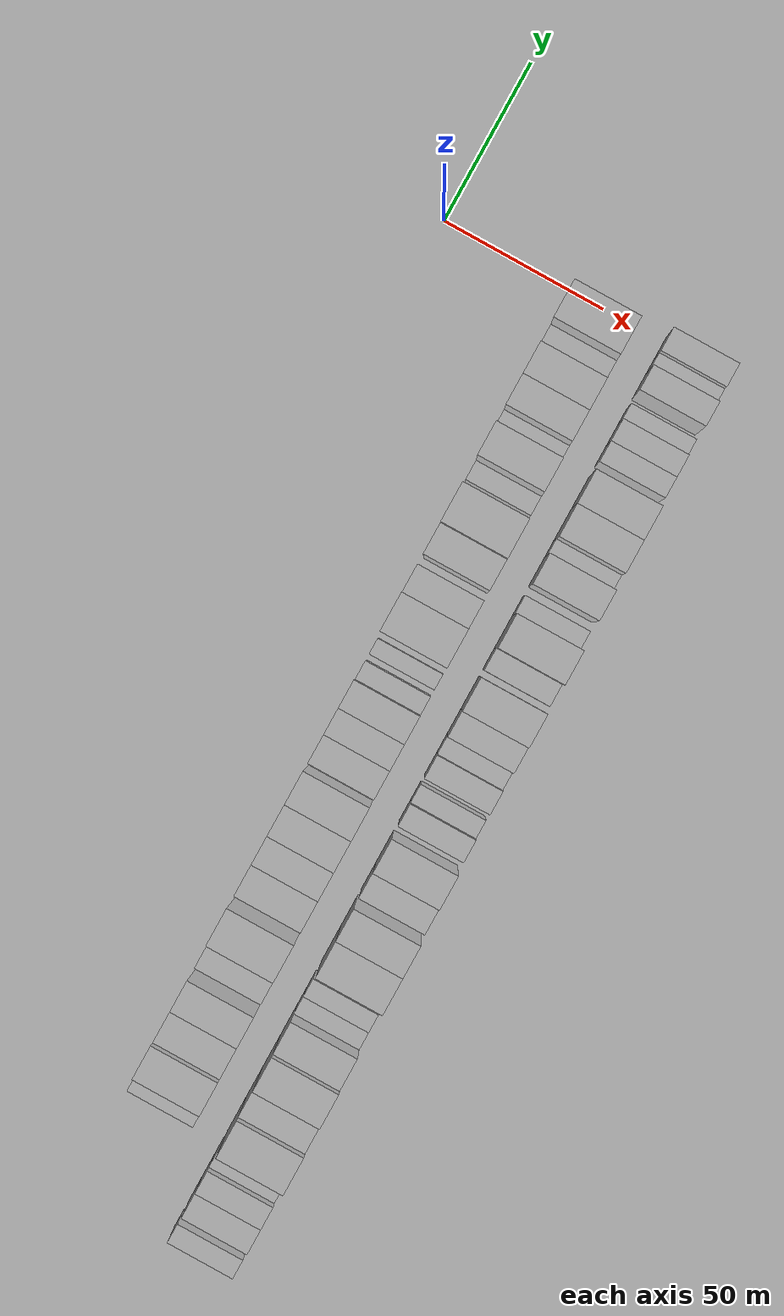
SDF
<sdf version="1.6">
 <world name="default">
  <include><name>ground_plane_1</name><uri>model://HANNAS_ground_plane</uri></include>
  <include>
   <name>ground_plane_2</name>
   <uri>model://HANNAS_ground_plane</uri>
   <pose>100 0 0  0 0 0</pose>
  </include>
  <model name="building_1">
   <static>1</static>
   <pose>50.0000 -243.4653 0 0.000000 0.000000 0.000000</pose>
   <link name="link">
    <pose>0 0 7.50 0 0 0</pose>
    <collision name="collision"><geometry><box><size>20.0000 6.3565 15.0000</size></box></geometry></collision>
    <visual name="visual">
     <cast_shadows>0</cast_shadows>
     <geometry><box><size>20.0000 6.3565 15.0000</size></box></geometry>
     <material>
      <script>
       <uri>model://HANNAS_wall/materials/scripts</uri>
       <uri>model://HANNAS_wall/materials/textures</uri>
       <name>vrc/HANNAS_wall</name>
      </script>
     </material>
    </visual>
   </link>
  </model>
  <model name="building_2">
   <static>1</static>
   <pose>50.0000 -235.2615 0 0.000000 0.000000 0.000000</pose>
   <link name="link">
    <pose>0 0 12.00 0 0 0</pose>
    <collision name="collision"><geometry><box><size>20.0000 10.0511 24.0000</size></box></geometry></collision>
    <visual name="visual">
     <cast_shadows>0</cast_shadows>
     <geometry><box><size>20.0000 10.0511 24.0000</size></box></geometry>
     <material>
      <script>
       <uri>model://HANNAS_wall/materials/scripts</uri>
       <uri>model://HANNAS_wall/materials/textures</uri>
       <name>vrc/HANNAS_wall</name>
      </script>
     </material>
    </visual>
   </link>
  </model>
  <model name="building_3">
   <static>1</static>
   <pose>50.0000 -225.6346 0 0.000000 0.000000 0.000000</pose>
   <link name="link">
    <pose>0 0 10.50 0 0 0</pose>
    <collision name="collision"><geometry><box><size>20.0000 9.2027 21.0000</size></box></geometry></collision>
    <visual name="visual">
     <cast_shadows>0</cast_shadows>
     <geometry><box><size>20.0000 9.2027 21.0000</size></box></geometry>
     <material>
      <script>
       <uri>model://HANNAS_wall/materials/scripts</uri>
       <uri>model://HANNAS_wall/materials/textures</uri>
       <name>vrc/HANNAS_wall</name>
      </script>
     </material>
    </visual>
   </link>
  </model>
  <model name="building_4">
   <static>1</static>
   <pose>50.0000 -216.3543 0 0.000000 0.000000 0.000000</pose>
   <link name="link">
    <pose>0 0 10.50 0 0 0</pose>
    <collision name="collision"><geometry><box><size>20.0000 9.3578 21.0000</size></box></geometry></collision>
    <visual name="visual">
     <cast_shadows>0</cast_shadows>
     <geometry><box><size>20.0000 9.3578 21.0000</size></box></geometry>
     <material>
      <script>
       <uri>model://HANNAS_wall/materials/scripts</uri>
       <uri>model://HANNAS_wall/materials/textures</uri>
       <name>vrc/HANNAS_wall</name>
      </script>
     </material>
    </visual>
   </link>
  </model>
  <model name="building_5">
   <static>1</static>
   <pose>50.0000 -204.6761 0 0.000000 0.000000 0.000000</pose>
   <link name="link">
    <pose>0 0 9.00 0 0 0</pose>
    <collision name="collision"><geometry><box><size>20.0000 7.9984 18.0000</size></box></geometry></collision>
    <visual name="visual">
     <cast_shadows>0</cast_shadows>
     <geometry><box><size>20.0000 7.9984 18.0000</size></box></geometry>
     <material>
      <script>
       <uri>model://HANNAS_wall/materials/scripts</uri>
       <uri>model://HANNAS_wall/materials/textures</uri>
       <name>vrc/HANNAS_wall</name>
      </script>
     </material>
    </visual>
   </link>
  </model>
  <model name="building_6">
   <static>1</static>
   <pose>50.0000 -195.0604 0 0.000000 0.000000 0.000000</pose>
   <link name="link">
    <pose>0 0 12.00 0 0 0</pose>
    <collision name="collision"><geometry><box><size>20.0000 11.2330 24.0000</size></box></geometry></collision>
    <visual name="visual">
     <cast_shadows>0</cast_shadows>
     <geometry><box><size>20.0000 11.2330 24.0000</size></box></geometry>
     <material>
      <script>
       <uri>model://HANNAS_wall/materials/scripts</uri>
       <uri>model://HANNAS_wall/materials/textures</uri>
       <name>vrc/HANNAS_wall</name>
      </script>
     </material>
    </visual>
   </link>
  </model>
  <model name="building_7">
   <static>1</static>
   <pose>50.0000 -181.7462 0 0.000000 0.000000 0.000000</pose>
   <link name="link">
    <pose>0 0 10.50 0 0 0</pose>
    <collision name="collision"><geometry><box><size>20.0000 9.3955 21.0000</size></box></geometry></collision>
    <visual name="visual">
     <cast_shadows>0</cast_shadows>
     <geometry><box><size>20.0000 9.3955 21.0000</size></box></geometry>
     <material>
      <script>
       <uri>model://HANNAS_wall/materials/scripts</uri>
       <uri>model://HANNAS_wall/materials/textures</uri>
       <name>vrc/HANNAS_wall</name>
      </script>
     </material>
    </visual>
   </link>
  </model>
  <model name="building_8">
   <static>1</static>
   <pose>50.0000 -172.7809 0 0.000000 0.000000 0.000000</pose>
   <link name="link">
    <pose>0 0 10.50 0 0 0</pose>
    <collision name="collision"><geometry><box><size>20.0000 8.5352 21.0000</size></box></geometry></collision>
    <visual name="visual">
     <cast_shadows>0</cast_shadows>
     <geometry><box><size>20.0000 8.5352 21.0000</size></box></geometry>
     <material>
      <script>
       <uri>model://HANNAS_wall/materials/scripts</uri>
       <uri>model://HANNAS_wall/materials/textures</uri>
       <name>vrc/HANNAS_wall</name>
      </script>
     </material>
    </visual>
   </link>
  </model>
  <model name="building_9">
   <static>1</static>
   <pose>50.0000 -163.7845 0 0.000000 0.000000 0.000000</pose>
   <link name="link">
    <pose>0 0 10.50 0 0 0</pose>
    <collision name="collision"><geometry><box><size>20.0000 9.4576 21.0000</size></box></geometry></collision>
    <visual name="visual">
     <cast_shadows>0</cast_shadows>
     <geometry><box><size>20.0000 9.4576 21.0000</size></box></geometry>
     <material>
      <script>
       <uri>model://HANNAS_wall/materials/scripts</uri>
       <uri>model://HANNAS_wall/materials/textures</uri>
       <name>vrc/HANNAS_wall</name>
      </script>
     </material>
    </visual>
   </link>
  </model>
  <model name="building_10">
   <static>1</static>
   <pose>50.0000 -154.0091 0 0.000000 0.000000 0.000000</pose>
   <link name="link">
    <pose>0 0 10.50 0 0 0</pose>
    <collision name="collision"><geometry><box><size>20.0000 10.0933 21.0000</size></box></geometry></collision>
    <visual name="visual">
     <cast_shadows>0</cast_shadows>
     <geometry><box><size>20.0000 10.0933 21.0000</size></box></geometry>
     <material>
      <script>
       <uri>model://HANNAS_wall/materials/scripts</uri>
       <uri>model://HANNAS_wall/materials/textures</uri>
       <name>vrc/HANNAS_wall</name>
      </script>
     </material>
    </visual>
   </link>
  </model>
  <model name="building_11">
   <static>1</static>
   <pose>50.0000 -142.6067 0 0.000000 0.000000 0.000000</pose>
   <link name="link">
    <pose>0 0 9.00 0 0 0</pose>
    <collision name="collision"><geometry><box><size>20.0000 8.7116 18.0000</size></box></geometry></collision>
    <visual name="visual">
     <cast_shadows>0</cast_shadows>
     <geometry><box><size>20.0000 8.7116 18.0000</size></box></geometry>
     <material>
      <script>
       <uri>model://HANNAS_wall/materials/scripts</uri>
       <uri>model://HANNAS_wall/materials/textures</uri>
       <name>vrc/HANNAS_wall</name>
      </script>
     </material>
    </visual>
   </link>
  </model>
  <model name="building_12">
   <static>1</static>
   <pose>50.0000 -134.2623 0 0.000000 0.000000 0.000000</pose>
   <link name="link">
    <pose>0 0 9.00 0 0 0</pose>
    <collision name="collision"><geometry><box><size>20.0000 7.9771 18.0000</size></box></geometry></collision>
    <visual name="visual">
     <cast_shadows>0</cast_shadows>
     <geometry><box><size>20.0000 7.9771 18.0000</size></box></geometry>
     <material>
      <script>
       <uri>model://HANNAS_wall/materials/scripts</uri>
       <uri>model://HANNAS_wall/materials/textures</uri>
       <name>vrc/HANNAS_wall</name>
      </script>
     </material>
    </visual>
   </link>
  </model>
  <model name="building_13">
   <static>1</static>
   <pose>50.0000 -125.9835 0 0.000000 0.000000 0.000000</pose>
   <link name="link">
    <pose>0 0 9.00 0 0 0</pose>
    <collision name="collision"><geometry><box><size>20.0000 8.5806 18.0000</size></box></geometry></collision>
    <visual name="visual">
     <cast_shadows>0</cast_shadows>
     <geometry><box><size>20.0000 8.5806 18.0000</size></box></geometry>
     <material>
      <script>
       <uri>model://HANNAS_wall/materials/scripts</uri>
       <uri>model://HANNAS_wall/materials/textures</uri>
       <name>vrc/HANNAS_wall</name>
      </script>
     </material>
    </visual>
   </link>
  </model>
  <model name="building_14">
   <static>1</static>
   <pose>50.0000 -118.8375 0 0.000000 0.000000 0.000000</pose>
   <link name="link">
    <pose>0 0 6.00 0 0 0</pose>
    <collision name="collision"><geometry><box><size>20.0000 5.7114 12.0000</size></box></geometry></collision>
    <visual name="visual">
     <cast_shadows>0</cast_shadows>
     <geometry><box><size>20.0000 5.7114 12.0000</size></box></geometry>
     <material>
      <script>
       <uri>model://HANNAS_wall/materials/scripts</uri>
       <uri>model://HANNAS_wall/materials/textures</uri>
       <name>vrc/HANNAS_wall</name>
      </script>
     </material>
    </visual>
   </link>
  </model>
  <model name="building_15">
   <static>1</static>
   <pose>50.0000 -111.5586 0 0.000000 0.000000 0.000000</pose>
   <link name="link">
    <pose>0 0 6.00 0 0 0</pose>
    <collision name="collision"><geometry><box><size>20.0000 4.8464 12.0000</size></box></geometry></collision>
    <visual name="visual">
     <cast_shadows>0</cast_shadows>
     <geometry><box><size>20.0000 4.8464 12.0000</size></box></geometry>
     <material>
      <script>
       <uri>model://HANNAS_wall/materials/scripts</uri>
       <uri>model://HANNAS_wall/materials/textures</uri>
       <name>vrc/HANNAS_wall</name>
      </script>
     </material>
    </visual>
   </link>
  </model>
  <model name="building_16">
   <static>1</static>
   <pose>50.0000 -101.2901 0 0.000000 0.000000 0.000000</pose>
   <link name="link">
    <pose>0 0 12.00 0 0 0</pose>
    <collision name="collision"><geometry><box><size>20.0000 11.6907 24.0000</size></box></geometry></collision>
    <visual name="visual">
     <cast_shadows>0</cast_shadows>
     <geometry><box><size>20.0000 11.6907 24.0000</size></box></geometry>
     <material>
      <script>
       <uri>model://HANNAS_wall/materials/scripts</uri>
       <uri>model://HANNAS_wall/materials/textures</uri>
       <name>vrc/HANNAS_wall</name>
      </script>
     </material>
    </visual>
   </link>
  </model>
  <model name="building_17">
   <static>1</static>
   <pose>50.0000 -91.2035 0 0.000000 0.000000 0.000000</pose>
   <link name="link">
    <pose>0 0 10.50 0 0 0</pose>
    <collision name="collision"><geometry><box><size>20.0000 8.4825 21.0000</size></box></geometry></collision>
    <visual name="visual">
     <cast_shadows>0</cast_shadows>
     <geometry><box><size>20.0000 8.4825 21.0000</size></box></geometry>
     <material>
      <script>
       <uri>model://HANNAS_wall/materials/scripts</uri>
       <uri>model://HANNAS_wall/materials/textures</uri>
       <name>vrc/HANNAS_wall</name>
      </script>
     </material>
    </visual>
   </link>
  </model>
  <model name="building_18">
   <static>1</static>
   <pose>50.0000 -79.2576 0 0.000000 0.000000 0.000000</pose>
   <link name="link">
    <pose>0 0 10.50 0 0 0</pose>
    <collision name="collision"><geometry><box><size>20.0000 9.4094 21.0000</size></box></geometry></collision>
    <visual name="visual">
     <cast_shadows>0</cast_shadows>
     <geometry><box><size>20.0000 9.4094 21.0000</size></box></geometry>
     <material>
      <script>
       <uri>model://HANNAS_wall/materials/scripts</uri>
       <uri>model://HANNAS_wall/materials/textures</uri>
       <name>vrc/HANNAS_wall</name>
      </script>
     </material>
    </visual>
   </link>
  </model>
  <model name="building_19">
   <static>1</static>
   <pose>50.0000 -68.5814 0 0.000000 0.000000 0.000000</pose>
   <link name="link">
    <pose>0 0 12.00 0 0 0</pose>
    <collision name="collision"><geometry><box><size>20.0000 11.9430 24.0000</size></box></geometry></collision>
    <visual name="visual">
     <cast_shadows>0</cast_shadows>
     <geometry><box><size>20.0000 11.9430 24.0000</size></box></geometry>
     <material>
      <script>
       <uri>model://HANNAS_wall/materials/scripts</uri>
       <uri>model://HANNAS_wall/materials/textures</uri>
       <name>vrc/HANNAS_wall</name>
      </script>
     </material>
    </visual>
   </link>
  </model>
  <model name="building_20">
   <static>1</static>
   <pose>50.0000 -57.6788 0 0.000000 0.000000 0.000000</pose>
   <link name="link">
    <pose>0 0 6.00 0 0 0</pose>
    <collision name="collision"><geometry><box><size>20.0000 5.8621 12.0000</size></box></geometry></collision>
    <visual name="visual">
     <cast_shadows>0</cast_shadows>
     <geometry><box><size>20.0000 5.8621 12.0000</size></box></geometry>
     <material>
      <script>
       <uri>model://HANNAS_wall/materials/scripts</uri>
       <uri>model://HANNAS_wall/materials/textures</uri>
       <name>vrc/HANNAS_wall</name>
      </script>
     </material>
    </visual>
   </link>
  </model>
  <model name="building_21">
   <static>1</static>
   <pose>50.0000 -49.6550 0 0.000000 0.000000 0.000000</pose>
   <link name="link">
    <pose>0 0 12.00 0 0 0</pose>
    <collision name="collision"><geometry><box><size>20.0000 10.1855 24.0000</size></box></geometry></collision>
    <visual name="visual">
     <cast_shadows>0</cast_shadows>
     <geometry><box><size>20.0000 10.1855 24.0000</size></box></geometry>
     <material>
      <script>
       <uri>model://HANNAS_wall/materials/scripts</uri>
       <uri>model://HANNAS_wall/materials/textures</uri>
       <name>vrc/HANNAS_wall</name>
      </script>
     </material>
    </visual>
   </link>
  </model>
  <model name="building_22">
   <static>1</static>
   <pose>50.0000 -41.8930 0 0.000000 0.000000 0.000000</pose>
   <link name="link">
    <pose>0 0 6.00 0 0 0</pose>
    <collision name="collision"><geometry><box><size>20.0000 5.3385 12.0000</size></box></geometry></collision>
    <visual name="visual">
     <cast_shadows>0</cast_shadows>
     <geometry><box><size>20.0000 5.3385 12.0000</size></box></geometry>
     <material>
      <script>
       <uri>model://HANNAS_wall/materials/scripts</uri>
       <uri>model://HANNAS_wall/materials/textures</uri>
       <name>vrc/HANNAS_wall</name>
      </script>
     </material>
    </visual>
   </link>
  </model>
  <model name="building_23">
   <static>1</static>
   <pose>50.0000 -34.5507 0 0.000000 0.000000 0.000000</pose>
   <link name="link">
    <pose>0 0 10.50 0 0 0</pose>
    <collision name="collision"><geometry><box><size>20.0000 9.3463 21.0000</size></box></geometry></collision>
    <visual name="visual">
     <cast_shadows>0</cast_shadows>
     <geometry><box><size>20.0000 9.3463 21.0000</size></box></geometry>
     <material>
      <script>
       <uri>model://HANNAS_wall/materials/scripts</uri>
       <uri>model://HANNAS_wall/materials/textures</uri>
       <name>vrc/HANNAS_wall</name>
      </script>
     </material>
    </visual>
   </link>
  </model>
  <model name="building_24">
   <static>1</static>
   <pose>50.0000 -25.0386 0 0.000000 0.000000 0.000000</pose>
   <link name="link">
    <pose>0 0 10.50 0 0 0</pose>
    <collision name="collision"><geometry><box><size>20.0000 9.6778 21.0000</size></box></geometry></collision>
    <visual name="visual">
     <cast_shadows>0</cast_shadows>
     <geometry><box><size>20.0000 9.6778 21.0000</size></box></geometry>
     <material>
      <script>
       <uri>model://HANNAS_wall/materials/scripts</uri>
       <uri>model://HANNAS_wall/materials/textures</uri>
       <name>vrc/HANNAS_wall</name>
      </script>
     </material>
    </visual>
   </link>
  </model>
  <model name="building_25">
   <static>1</static>
   <pose>50.0000 -17.0260 0 0.000000 0.000000 0.000000</pose>
   <link name="link">
    <pose>0 0 7.50 0 0 0</pose>
    <collision name="collision"><geometry><box><size>20.0000 6.3474 15.0000</size></box></geometry></collision>
    <visual name="visual">
     <cast_shadows>0</cast_shadows>
     <geometry><box><size>20.0000 6.3474 15.0000</size></box></geometry>
     <material>
      <script>
       <uri>model://HANNAS_wall/materials/scripts</uri>
       <uri>model://HANNAS_wall/materials/textures</uri>
       <name>vrc/HANNAS_wall</name>
      </script>
     </material>
    </visual>
   </link>
  </model>
  <model name="building_26">
   <static>1</static>
   <pose>50.0000 -8.1673 0 0.000000 0.000000 0.000000</pose>
   <link name="link">
    <pose>0 0 12.00 0 0 0</pose>
    <collision name="collision"><geometry><box><size>20.0000 11.3700 24.0000</size></box></geometry></collision>
    <visual name="visual">
     <cast_shadows>0</cast_shadows>
     <geometry><box><size>20.0000 11.3700 24.0000</size></box></geometry>
     <material>
      <script>
       <uri>model://HANNAS_wall/materials/scripts</uri>
       <uri>model://HANNAS_wall/materials/textures</uri>
       <name>vrc/HANNAS_wall</name>
      </script>
     </material>
    </visual>
   </link>
  </model>
  <model name="building_57">
   <static>1</static>
   <pose>79.0000 -275.1417 0 0.000000 0.000000 0.000000</pose>
   <link name="link">
    <pose>0 0 6.00 0 0 0</pose>
    <collision name="collision"><geometry><box><size>20.0000 5.7165 12.0000</size></box></geometry></collision>
    <visual name="visual">
     <cast_shadows>0</cast_shadows>
     <geometry><box><size>20.0000 5.7165 12.0000</size></box></geometry>
     <material>
      <script>
       <uri>model://HANNAS_wall/materials/scripts</uri>
       <uri>model://HANNAS_wall/materials/textures</uri>
       <name>vrc/HANNAS_wall</name>
      </script>
     </material>
    </visual>
   </link>
  </model>
  <model name="building_58">
   <static>1</static>
   <pose>79.0000 -265.5435 0 0.000000 0.000000 0.000000</pose>
   <link name="link">
    <pose>0 0 7.50 0 0 0</pose>
    <collision name="collision"><geometry><box><size>20.0000 7.4801 15.0000</size></box></geometry></collision>
    <visual name="visual">
     <cast_shadows>0</cast_shadows>
     <geometry><box><size>20.0000 7.4801 15.0000</size></box></geometry>
     <material>
      <script>
       <uri>model://HANNAS_wall/materials/scripts</uri>
       <uri>model://HANNAS_wall/materials/textures</uri>
       <name>vrc/HANNAS_wall</name>
      </script>
     </material>
    </visual>
   </link>
  </model>
  <model name="building_59">
   <static>1</static>
   <pose>79.0000 -258.3628 0 0.000000 0.000000 0.000000</pose>
   <link name="link">
    <pose>0 0 7.50 0 0 0</pose>
    <collision name="collision"><geometry><box><size>20.0000 6.8813 15.0000</size></box></geometry></collision>
    <visual name="visual">
     <cast_shadows>0</cast_shadows>
     <geometry><box><size>20.0000 6.8813 15.0000</size></box></geometry>
     <material>
      <script>
       <uri>model://HANNAS_wall/materials/scripts</uri>
       <uri>model://HANNAS_wall/materials/textures</uri>
       <name>vrc/HANNAS_wall</name>
      </script>
     </material>
    </visual>
   </link>
  </model>
  <model name="building_60">
   <static>1</static>
   <pose>79.0000 -252.3158 0 0.000000 0.000000 0.000000</pose>
   <link name="link">
    <pose>0 0 6.00 0 0 0</pose>
    <collision name="collision"><geometry><box><size>20.0000 5.2128 12.0000</size></box></geometry></collision>
    <visual name="visual">
     <cast_shadows>0</cast_shadows>
     <geometry><box><size>20.0000 5.2128 12.0000</size></box></geometry>
     <material>
      <script>
       <uri>model://HANNAS_wall/materials/scripts</uri>
       <uri>model://HANNAS_wall/materials/textures</uri>
       <name>vrc/HANNAS_wall</name>
      </script>
     </material>
    </visual>
   </link>
  </model>
  <model name="building_61">
   <static>1</static>
   <pose>79.0000 -242.0895 0 0.000000 0.000000 0.000000</pose>
   <link name="link">
    <pose>0 0 12.00 0 0 0</pose>
    <collision name="collision"><geometry><box><size>20.0000 11.2398 24.0000</size></box></geometry></collision>
    <visual name="visual">
     <cast_shadows>0</cast_shadows>
     <geometry><box><size>20.0000 11.2398 24.0000</size></box></geometry>
     <material>
      <script>
       <uri>model://HANNAS_wall/materials/scripts</uri>
       <uri>model://HANNAS_wall/materials/textures</uri>
       <name>vrc/HANNAS_wall</name>
      </script>
     </material>
    </visual>
   </link>
  </model>
  <model name="building_62">
   <static>1</static>
   <pose>79.0000 -232.2515 0 0.000000 0.000000 0.000000</pose>
   <link name="link">
    <pose>0 0 10.50 0 0 0</pose>
    <collision name="collision"><geometry><box><size>20.0000 8.4360 21.0000</size></box></geometry></collision>
    <visual name="visual">
     <cast_shadows>0</cast_shadows>
     <geometry><box><size>20.0000 8.4360 21.0000</size></box></geometry>
     <material>
      <script>
       <uri>model://HANNAS_wall/materials/scripts</uri>
       <uri>model://HANNAS_wall/materials/textures</uri>
       <name>vrc/HANNAS_wall</name>
      </script>
     </material>
    </visual>
   </link>
  </model>
  <model name="building_63">
   <static>1</static>
   <pose>79.0000 -222.8602 0 0.000000 0.000000 0.000000</pose>
   <link name="link">
    <pose>0 0 12.00 0 0 0</pose>
    <collision name="collision"><geometry><box><size>20.0000 10.3467 24.0000</size></box></geometry></collision>
    <visual name="visual">
     <cast_shadows>0</cast_shadows>
     <geometry><box><size>20.0000 10.3467 24.0000</size></box></geometry>
     <material>
      <script>
       <uri>model://HANNAS_wall/materials/scripts</uri>
       <uri>model://HANNAS_wall/materials/textures</uri>
       <name>vrc/HANNAS_wall</name>
      </script>
     </material>
    </visual>
   </link>
  </model>
  <model name="building_64">
   <static>1</static>
   <pose>79.0000 -212.8440 0 0.000000 0.000000 0.000000</pose>
   <link name="link">
    <pose>0 0 10.50 0 0 0</pose>
    <collision name="collision"><geometry><box><size>20.0000 9.6857 21.0000</size></box></geometry></collision>
    <visual name="visual">
     <cast_shadows>0</cast_shadows>
     <geometry><box><size>20.0000 9.6857 21.0000</size></box></geometry>
     <material>
      <script>
       <uri>model://HANNAS_wall/materials/scripts</uri>
       <uri>model://HANNAS_wall/materials/textures</uri>
       <name>vrc/HANNAS_wall</name>
      </script>
     </material>
    </visual>
   </link>
  </model>
  <model name="building_65">
   <static>1</static>
   <pose>79.0000 -205.3781 0 0.000000 0.000000 0.000000</pose>
   <link name="link">
    <pose>0 0 6.00 0 0 0</pose>
    <collision name="collision"><geometry><box><size>20.0000 5.2461 12.0000</size></box></geometry></collision>
    <visual name="visual">
     <cast_shadows>0</cast_shadows>
     <geometry><box><size>20.0000 5.2461 12.0000</size></box></geometry>
     <material>
      <script>
       <uri>model://HANNAS_wall/materials/scripts</uri>
       <uri>model://HANNAS_wall/materials/textures</uri>
       <name>vrc/HANNAS_wall</name>
      </script>
     </material>
    </visual>
   </link>
  </model>
  <model name="building_66">
   <static>1</static>
   <pose>79.0000 -200.0155 0 0.000000 0.000000 0.000000</pose>
   <link name="link">
    <pose>0 0 6.00 0 0 0</pose>
    <collision name="collision"><geometry><box><size>20.0000 5.4791 12.0000</size></box></geometry></collision>
    <visual name="visual">
     <cast_shadows>0</cast_shadows>
     <geometry><box><size>20.0000 5.4791 12.0000</size></box></geometry>
     <material>
      <script>
       <uri>model://HANNAS_wall/materials/scripts</uri>
       <uri>model://HANNAS_wall/materials/textures</uri>
       <name>vrc/HANNAS_wall</name>
      </script>
     </material>
    </visual>
   </link>
  </model>
  <model name="building_67">
   <static>1</static>
   <pose>79.0000 -188.7970 0 0.000000 0.000000 0.000000</pose>
   <link name="link">
    <pose>0 0 12.00 0 0 0</pose>
    <collision name="collision"><geometry><box><size>20.0000 10.9581 24.0000</size></box></geometry></collision>
    <visual name="visual">
     <cast_shadows>0</cast_shadows>
     <geometry><box><size>20.0000 10.9581 24.0000</size></box></geometry>
     <material>
      <script>
       <uri>model://HANNAS_wall/materials/scripts</uri>
       <uri>model://HANNAS_wall/materials/textures</uri>
       <name>vrc/HANNAS_wall</name>
      </script>
     </material>
    </visual>
   </link>
  </model>
  <model name="building_68">
   <static>1</static>
   <pose>79.0000 -178.4543 0 0.000000 0.000000 0.000000</pose>
   <link name="link">
    <pose>0 0 12.00 0 0 0</pose>
    <collision name="collision"><geometry><box><size>20.0000 9.7272 24.0000</size></box></geometry></collision>
    <visual name="visual">
     <cast_shadows>0</cast_shadows>
     <geometry><box><size>20.0000 9.7272 24.0000</size></box></geometry>
     <material>
      <script>
       <uri>model://HANNAS_wall/materials/scripts</uri>
       <uri>model://HANNAS_wall/materials/textures</uri>
       <name>vrc/HANNAS_wall</name>
      </script>
     </material>
    </visual>
   </link>
  </model>
  <model name="building_69">
   <static>1</static>
   <pose>79.0000 -167.5868 0 0.000000 0.000000 0.000000</pose>
   <link name="link">
    <pose>0 0 9.00 0 0 0</pose>
    <collision name="collision"><geometry><box><size>20.0000 8.0079 18.0000</size></box></geometry></collision>
    <visual name="visual">
     <cast_shadows>0</cast_shadows>
     <geometry><box><size>20.0000 8.0079 18.0000</size></box></geometry>
     <material>
      <script>
       <uri>model://HANNAS_wall/materials/scripts</uri>
       <uri>model://HANNAS_wall/materials/textures</uri>
       <name>vrc/HANNAS_wall</name>
      </script>
     </material>
    </visual>
   </link>
  </model>
  <model name="building_70">
   <static>1</static>
   <pose>79.0000 -158.4447 0 0.000000 0.000000 0.000000</pose>
   <link name="link">
    <pose>0 0 10.50 0 0 0</pose>
    <collision name="collision"><geometry><box><size>20.0000 10.2761 21.0000</size></box></geometry></collision>
    <visual name="visual">
     <cast_shadows>0</cast_shadows>
     <geometry><box><size>20.0000 10.2761 21.0000</size></box></geometry>
     <material>
      <script>
       <uri>model://HANNAS_wall/materials/scripts</uri>
       <uri>model://HANNAS_wall/materials/textures</uri>
       <name>vrc/HANNAS_wall</name>
      </script>
     </material>
    </visual>
   </link>
  </model>
  <model name="building_71">
   <static>1</static>
   <pose>79.0000 -146.8623 0 0.000000 0.000000 0.000000</pose>
   <link name="link">
    <pose>0 0 7.50 0 0 0</pose>
    <collision name="collision"><geometry><box><size>20.0000 6.8887 15.0000</size></box></geometry></collision>
    <visual name="visual">
     <cast_shadows>0</cast_shadows>
     <geometry><box><size>20.0000 6.8887 15.0000</size></box></geometry>
     <material>
      <script>
       <uri>model://HANNAS_wall/materials/scripts</uri>
       <uri>model://HANNAS_wall/materials/textures</uri>
       <name>vrc/HANNAS_wall</name>
      </script>
     </material>
    </visual>
   </link>
  </model>
  <model name="building_72">
   <static>1</static>
   <pose>79.0000 -140.5966 0 0.000000 0.000000 0.000000</pose>
   <link name="link">
    <pose>0 0 6.00 0 0 0</pose>
    <collision name="collision"><geometry><box><size>20.0000 5.6427 12.0000</size></box></geometry></collision>
    <visual name="visual">
     <cast_shadows>0</cast_shadows>
     <geometry><box><size>20.0000 5.6427 12.0000</size></box></geometry>
     <material>
      <script>
       <uri>model://HANNAS_wall/materials/scripts</uri>
       <uri>model://HANNAS_wall/materials/textures</uri>
       <name>vrc/HANNAS_wall</name>
      </script>
     </material>
    </visual>
   </link>
  </model>
  <model name="building_73">
   <static>1</static>
   <pose>79.0000 -132.1906 0 0.000000 0.000000 0.000000</pose>
   <link name="link">
    <pose>0 0 7.50 0 0 0</pose>
    <collision name="collision"><geometry><box><size>20.0000 7.1692 15.0000</size></box></geometry></collision>
    <visual name="visual">
     <cast_shadows>0</cast_shadows>
     <geometry><box><size>20.0000 7.1692 15.0000</size></box></geometry>
     <material>
      <script>
       <uri>model://HANNAS_wall/materials/scripts</uri>
       <uri>model://HANNAS_wall/materials/textures</uri>
       <name>vrc/HANNAS_wall</name>
      </script>
     </material>
    </visual>
   </link>
  </model>
  <model name="building_74">
   <static>1</static>
   <pose>79.0000 -125.7830 0 0.000000 0.000000 0.000000</pose>
   <link name="link">
    <pose>0 0 6.00 0 0 0</pose>
    <collision name="collision"><geometry><box><size>20.0000 5.6460 12.0000</size></box></geometry></collision>
    <visual name="visual">
     <cast_shadows>0</cast_shadows>
     <geometry><box><size>20.0000 5.6460 12.0000</size></box></geometry>
     <material>
      <script>
       <uri>model://HANNAS_wall/materials/scripts</uri>
       <uri>model://HANNAS_wall/materials/textures</uri>
       <name>vrc/HANNAS_wall</name>
      </script>
     </material>
    </visual>
   </link>
  </model>
  <model name="building_75">
   <static>1</static>
   <pose>79.0000 -119.0131 0 0.000000 0.000000 0.000000</pose>
   <link name="link">
    <pose>0 0 9.00 0 0 0</pose>
    <collision name="collision"><geometry><box><size>20.0000 7.8937 18.0000</size></box></geometry></collision>
    <visual name="visual">
     <cast_shadows>0</cast_shadows>
     <geometry><box><size>20.0000 7.8937 18.0000</size></box></geometry>
     <material>
      <script>
       <uri>model://HANNAS_wall/materials/scripts</uri>
       <uri>model://HANNAS_wall/materials/textures</uri>
       <name>vrc/HANNAS_wall</name>
      </script>
     </material>
    </visual>
   </link>
  </model>
  <model name="building_76">
   <static>1</static>
   <pose>79.0000 -109.9778 0 0.000000 0.000000 0.000000</pose>
   <link name="link">
    <pose>0 0 10.50 0 0 0</pose>
    <collision name="collision"><geometry><box><size>20.0000 10.1770 21.0000</size></box></geometry></collision>
    <visual name="visual">
     <cast_shadows>0</cast_shadows>
     <geometry><box><size>20.0000 10.1770 21.0000</size></box></geometry>
     <material>
      <script>
       <uri>model://HANNAS_wall/materials/scripts</uri>
       <uri>model://HANNAS_wall/materials/textures</uri>
       <name>vrc/HANNAS_wall</name>
      </script>
     </material>
    </visual>
   </link>
  </model>
  <model name="building_77">
   <static>1</static>
   <pose>79.0000 -99.5044 0 0.000000 0.000000 0.000000</pose>
   <link name="link">
    <pose>0 0 7.50 0 0 0</pose>
    <collision name="collision"><geometry><box><size>20.0000 6.7697 15.0000</size></box></geometry></collision>
    <visual name="visual">
     <cast_shadows>0</cast_shadows>
     <geometry><box><size>20.0000 6.7697 15.0000</size></box></geometry>
     <material>
      <script>
       <uri>model://HANNAS_wall/materials/scripts</uri>
       <uri>model://HANNAS_wall/materials/textures</uri>
       <name>vrc/HANNAS_wall</name>
      </script>
     </material>
    </visual>
   </link>
  </model>
  <model name="building_78">
   <static>1</static>
   <pose>79.0000 -90.9655 0 0.000000 0.000000 0.000000</pose>
   <link name="link">
    <pose>0 0 12.00 0 0 0</pose>
    <collision name="collision"><geometry><box><size>20.0000 10.3080 24.0000</size></box></geometry></collision>
    <visual name="visual">
     <cast_shadows>0</cast_shadows>
     <geometry><box><size>20.0000 10.3080 24.0000</size></box></geometry>
     <material>
      <script>
       <uri>model://HANNAS_wall/materials/scripts</uri>
       <uri>model://HANNAS_wall/materials/textures</uri>
       <name>vrc/HANNAS_wall</name>
      </script>
     </material>
    </visual>
   </link>
  </model>
  <model name="building_79">
   <static>1</static>
   <pose>79.0000 -82.8894 0 0.000000 0.000000 0.000000</pose>
   <link name="link">
    <pose>0 0 6.00 0 0 0</pose>
    <collision name="collision"><geometry><box><size>20.0000 5.8443 12.0000</size></box></geometry></collision>
    <visual name="visual">
     <cast_shadows>0</cast_shadows>
     <geometry><box><size>20.0000 5.8443 12.0000</size></box></geometry>
     <material>
      <script>
       <uri>model://HANNAS_wall/materials/scripts</uri>
       <uri>model://HANNAS_wall/materials/textures</uri>
       <name>vrc/HANNAS_wall</name>
      </script>
     </material>
    </visual>
   </link>
  </model>
  <model name="building_80">
   <static>1</static>
   <pose>79.0000 -72.3171 0 0.000000 0.000000 0.000000</pose>
   <link name="link">
    <pose>0 0 10.50 0 0 0</pose>
    <collision name="collision"><geometry><box><size>20.0000 9.3003 21.0000</size></box></geometry></collision>
    <visual name="visual">
     <cast_shadows>0</cast_shadows>
     <geometry><box><size>20.0000 9.3003 21.0000</size></box></geometry>
     <material>
      <script>
       <uri>model://HANNAS_wall/materials/scripts</uri>
       <uri>model://HANNAS_wall/materials/textures</uri>
       <name>vrc/HANNAS_wall</name>
      </script>
     </material>
    </visual>
   </link>
  </model>
  <model name="building_81">
   <static>1</static>
   <pose>79.0000 -65.2013 0 0.000000 0.000000 0.000000</pose>
   <link name="link">
    <pose>0 0 6.00 0 0 0</pose>
    <collision name="collision"><geometry><box><size>20.0000 4.9313 12.0000</size></box></geometry></collision>
    <visual name="visual">
     <cast_shadows>0</cast_shadows>
     <geometry><box><size>20.0000 4.9313 12.0000</size></box></geometry>
     <material>
      <script>
       <uri>model://HANNAS_wall/materials/scripts</uri>
       <uri>model://HANNAS_wall/materials/textures</uri>
       <name>vrc/HANNAS_wall</name>
      </script>
     </material>
    </visual>
   </link>
  </model>
  <model name="building_82">
   <static>1</static>
   <pose>79.0000 -57.7597 0 0.000000 0.000000 0.000000</pose>
   <link name="link">
    <pose>0 0 10.50 0 0 0</pose>
    <collision name="collision"><geometry><box><size>20.0000 9.9521 21.0000</size></box></geometry></collision>
    <visual name="visual">
     <cast_shadows>0</cast_shadows>
     <geometry><box><size>20.0000 9.9521 21.0000</size></box></geometry>
     <material>
      <script>
       <uri>model://HANNAS_wall/materials/scripts</uri>
       <uri>model://HANNAS_wall/materials/textures</uri>
       <name>vrc/HANNAS_wall</name>
      </script>
     </material>
    </visual>
   </link>
  </model>
  <model name="building_83">
   <static>1</static>
   <pose>79.0000 -47.6495 0 0.000000 0.000000 0.000000</pose>
   <link name="link">
    <pose>0 0 10.50 0 0 0</pose>
    <collision name="collision"><geometry><box><size>20.0000 10.2684 21.0000</size></box></geometry></collision>
    <visual name="visual">
     <cast_shadows>0</cast_shadows>
     <geometry><box><size>20.0000 10.2684 21.0000</size></box></geometry>
     <material>
      <script>
       <uri>model://HANNAS_wall/materials/scripts</uri>
       <uri>model://HANNAS_wall/materials/textures</uri>
       <name>vrc/HANNAS_wall</name>
      </script>
     </material>
    </visual>
   </link>
  </model>
  <model name="building_84">
   <static>1</static>
   <pose>79.0000 -36.3296 0 0.000000 0.000000 0.000000</pose>
   <link name="link">
    <pose>0 0 7.50 0 0 0</pose>
    <collision name="collision"><geometry><box><size>20.0000 6.3713 15.0000</size></box></geometry></collision>
    <visual name="visual">
     <cast_shadows>0</cast_shadows>
     <geometry><box><size>20.0000 6.3713 15.0000</size></box></geometry>
     <material>
      <script>
       <uri>model://HANNAS_wall/materials/scripts</uri>
       <uri>model://HANNAS_wall/materials/textures</uri>
       <name>vrc/HANNAS_wall</name>
      </script>
     </material>
    </visual>
   </link>
  </model>
  <model name="building_85">
   <static>1</static>
   <pose>79.0000 -29.7677 0 0.000000 0.000000 0.000000</pose>
   <link name="link">
    <pose>0 0 7.50 0 0 0</pose>
    <collision name="collision"><geometry><box><size>20.0000 6.7526 15.0000</size></box></geometry></collision>
    <visual name="visual">
     <cast_shadows>0</cast_shadows>
     <geometry><box><size>20.0000 6.7526 15.0000</size></box></geometry>
     <material>
      <script>
       <uri>model://HANNAS_wall/materials/scripts</uri>
       <uri>model://HANNAS_wall/materials/textures</uri>
       <name>vrc/HANNAS_wall</name>
      </script>
     </material>
    </visual>
   </link>
  </model>
  <model name="building_86">
   <static>1</static>
   <pose>79.0000 -23.8075 0 0.000000 0.000000 0.000000</pose>
   <link name="link">
    <pose>0 0 6.00 0 0 0</pose>
    <collision name="collision"><geometry><box><size>20.0000 5.1678 12.0000</size></box></geometry></collision>
    <visual name="visual">
     <cast_shadows>0</cast_shadows>
     <geometry><box><size>20.0000 5.1678 12.0000</size></box></geometry>
     <material>
      <script>
       <uri>model://HANNAS_wall/materials/scripts</uri>
       <uri>model://HANNAS_wall/materials/textures</uri>
       <name>vrc/HANNAS_wall</name>
      </script>
     </material>
    </visual>
   </link>
  </model>
  <model name="building_87">
   <static>1</static>
   <pose>79.0000 -14.4470 0 0.000000 0.000000 0.000000</pose>
   <link name="link">
    <pose>0 0 9.00 0 0 0</pose>
    <collision name="collision"><geometry><box><size>20.0000 7.5531 18.0000</size></box></geometry></collision>
    <visual name="visual">
     <cast_shadows>0</cast_shadows>
     <geometry><box><size>20.0000 7.5531 18.0000</size></box></geometry>
     <material>
      <script>
       <uri>model://HANNAS_wall/materials/scripts</uri>
       <uri>model://HANNAS_wall/materials/textures</uri>
       <name>vrc/HANNAS_wall</name>
      </script>
     </material>
    </visual>
   </link>
  </model>
  <model name="building_88">
   <static>1</static>
   <pose>79.0000 -8.2355 0 0.000000 0.000000 0.000000</pose>
   <link name="link">
    <pose>0 0 6.00 0 0 0</pose>
    <collision name="collision"><geometry><box><size>20.0000 4.8699 12.0000</size></box></geometry></collision>
    <visual name="visual">
     <cast_shadows>0</cast_shadows>
     <geometry><box><size>20.0000 4.8699 12.0000</size></box></geometry>
     <material>
      <script>
       <uri>model://HANNAS_wall/materials/scripts</uri>
       <uri>model://HANNAS_wall/materials/textures</uri>
       <name>vrc/HANNAS_wall</name>
      </script>
     </material>
    </visual>
   </link>
  </model>
  <model name="building_89">
   <static>1</static>
   <pose>79.0000 -2.2141 0 0.000000 0.000000 0.000000</pose>
   <link name="link">
    <pose>0 0 7.50 0 0 0</pose>
    <collision name="collision"><geometry><box><size>20.0000 7.1731 15.0000</size></box></geometry></collision>
    <visual name="visual">
     <cast_shadows>0</cast_shadows>
     <geometry><box><size>20.0000 7.1731 15.0000</size></box></geometry>
     <material>
      <script>
       <uri>model://HANNAS_wall/materials/scripts</uri>
       <uri>model://HANNAS_wall/materials/textures</uri>
       <name>vrc/HANNAS_wall</name>
      </script>
     </material>
    </visual>
   </link>
  </model>
 </world>
</sdf>
